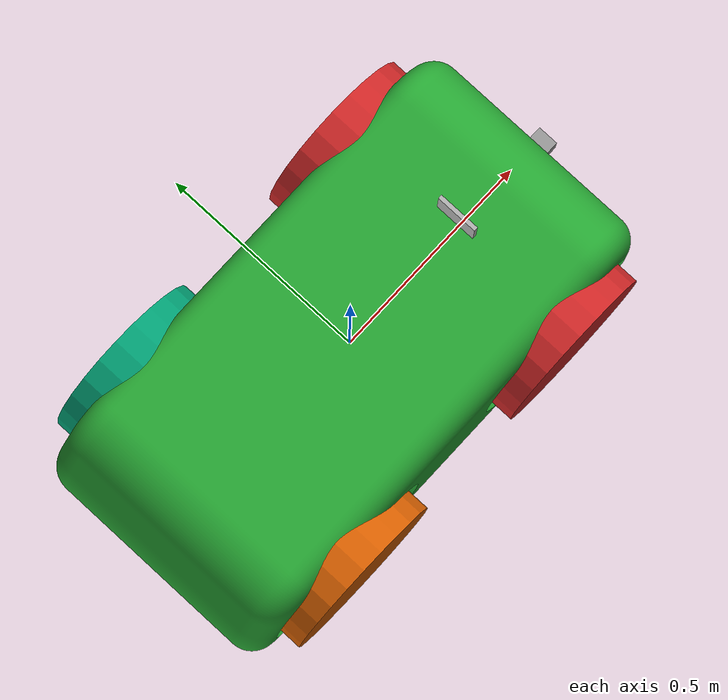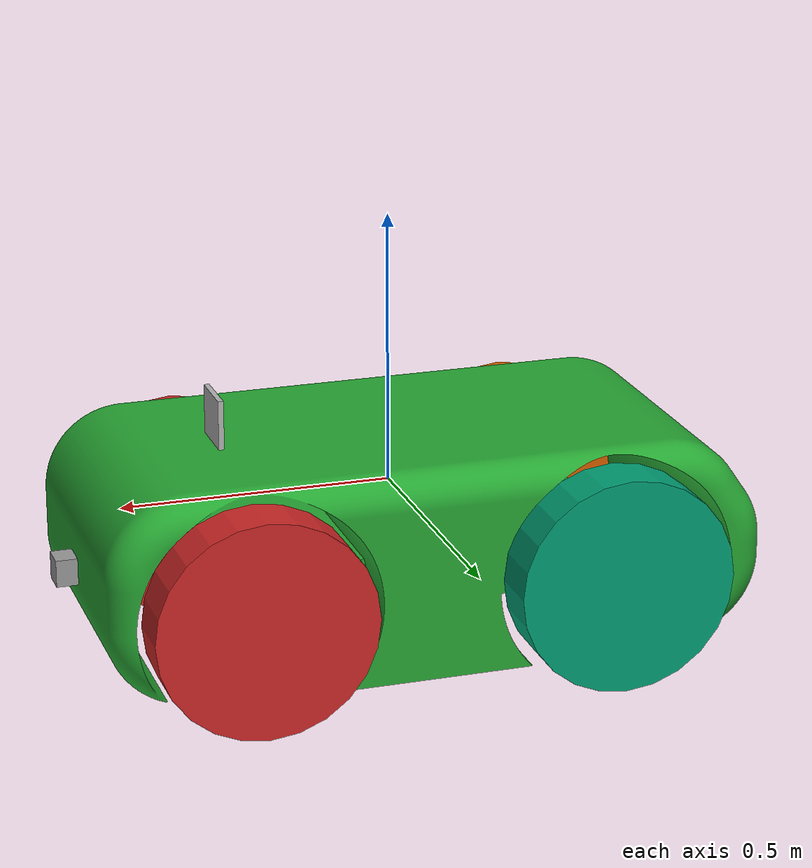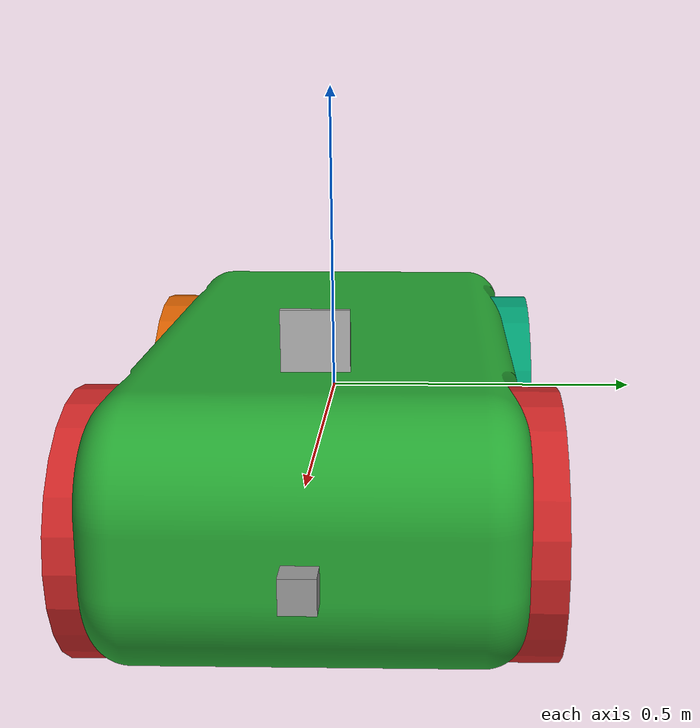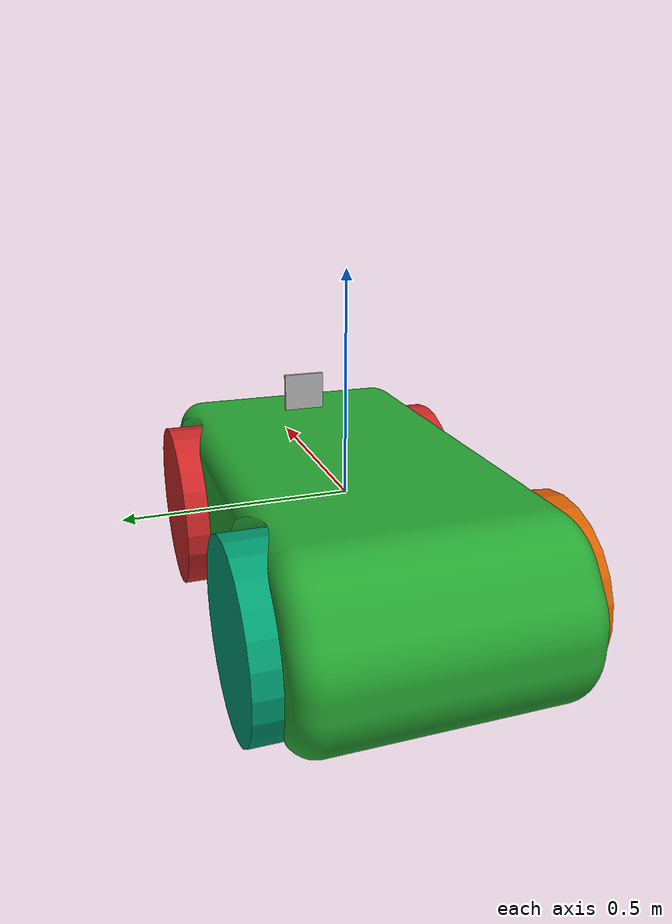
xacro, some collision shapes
<?xml version='1.0'?>

<robot name="four_wheeled" xmlns:xacro="http://www.ros.org/wiki/xacro">
<xacro:include filename="$(find my_robot)/urdf/four_wheeled.gazebo" />
  <link name="robot_footprint"></link>

  <joint name="robot_footprint_joint" type="fixed">
    <origin xyz="0 0 0" rpy="0 0 0" />
    <parent link="robot_footprint"/>
    <child link="chassis" />
  </joint>

  <link name='chassis'>
    <pose>0 0 0.1 0 0 0</pose>

    <inertial>
      <mass value="15.0"/>
      <origin xyz="0 0 0" rpy=" 0 0 0"/>
      <inertia
          ixx="0.1" ixy="0" ixz="0"
          iyy="0.1" iyz="0"
          izz="0.1"
      />
    </inertial>

    <collision name='collision'>
      <origin xyz="0 0 -0.1" rpy=" 0 0 0"/>
      <geometry>
        <box size="0.75 0.5 0.1"/>
      </geometry>
    </collision>

    <visual name='chassis_visual'>
      <origin xyz="-0.025 0 -0.13" rpy=" 0 0 0"/>
      <geometry>
        <mesh filename="package://my_robot/meshes/chassis.dae" scale="1 1 1"/>
        <!--box size="0.75 0.5 0.1"/-->
      </geometry>
    </visual>

  </link>

  <link name='left_wheel_back'>
    <inertial>
      <mass value="5.0"/>
      <origin xyz="0 0 0" rpy="0 1.5707 1.5707"/>
      <inertia
          ixx="0.1" ixy="0" ixz="0"
          iyy="0.1" iyz="0"
          izz="0.1"
      />
    </inertial>

    <collision name='left_wheel_back_collision'>
      <origin xyz="0 0 0" rpy="0 1.5707 1.5707"/>
      <geometry>
        <cylinder length="0.1" radius="0.2"/>
      </geometry>
    </collision>

    <visual name='left_wheel_back_visual'>
      <origin xyz="0 0 0" rpy="0 1.5707 1.5707"/>
      <geometry>
        <cylinder length="0.1" radius="0.2"/>
      </geometry>
    </visual>
  </link>

  <joint type="continuous" name="left_wheel_back_hinge">
    <origin xyz="-0.335901 0.300159 -0.120032" rpy="0 0 0"/>
    <child link="left_wheel_back"/>
    <parent link="chassis"/>
    <axis xyz="0 1 0" rpy="0 0 0"/>
    <limit effort="10000" velocity="1000"/>
    <dynamics damping="1.0" friction="1.0"/>
  </joint>

  <link name='left_wheel_front'>
    <inertial>
      <mass value="5.0"/>
      <origin xyz="0 0 0" rpy="0 1.5707 1.5707"/>
      <inertia
          ixx="0.1" ixy="0" ixz="0"
          iyy="0.1" iyz="0"
          izz="0.1"
      />
    </inertial>

    <collision name='left_wheel_front_collision'>
      <origin xyz="0 0 0" rpy="0 1.5707 1.5707"/>
      <geometry>
        <cylinder length="0.1" radius="0.2"/>
      </geometry>
    </collision>

    <visual name='left_wheel_front_visual'>
      <origin xyz="0 0 0" rpy="0 1.5707 1.5707"/>
      <geometry>
        <cylinder length="0.1" radius="0.2"/>
      </geometry>
    </visual>
  </link>

  <joint type="continuous" name="left_wheel_front_hinge">
    <origin xyz="0.324099 0.300159 -0.120032" rpy="0 0 0"/>
    <child link="left_wheel_front"/>
    <parent link="chassis"/>
    <axis xyz="0 1 0" rpy="0 0 0"/>
    <limit effort="10000" velocity="1000"/>
    <dynamics damping="1.0" friction="1.0"/>
  </joint>

  <link name='right_wheel_front'>
    <inertial>
      <mass value="5.0"/>
      <origin xyz="0 0 0" rpy="0 1.5707 1.5707"/>
      <inertia
          ixx="0.1" ixy="0" ixz="0"
          iyy="0.1" iyz="0"
          izz="0.1"
      />
    </inertial>

    <collision name='right_wheel_front_collision'>
      <origin xyz="0 0 0" rpy="0 1.5707 1.5707"/>
      <geometry>
        <cylinder length="0.1" radius="0.2"/>
      </geometry>
    </collision>

    <visual name='right_wheel_front_visual'>
      <origin xyz="0 0 0" rpy="0 1.5707 1.5707"/>
      <geometry>
        <cylinder length="0.1" radius="0.2"/>
      </geometry>
    </visual>
  </link>

  <joint type="continuous" name="right_wheel_front_hinge">
    <origin xyz="0.324099 -0.300159 -0.120032" rpy="0 0 0"/>
    <child link="right_wheel_front"/>
    <parent link="chassis"/>
    <axis xyz="0 1 0" rpy="0 0 0"/>
    <limit effort="10000" velocity="1000"/>
    <dynamics damping="1.0" friction="1.0"/>
  </joint>

  <link name='right_wheel_back'>
    <inertial>
      <mass value="5.0"/>
      <origin xyz="0 0 0" rpy="0 1.5707 1.5707"/>
      <inertia
          ixx="0.1" ixy="0" ixz="0"
          iyy="0.1" iyz="0"
          izz="0.1"
      />
    </inertial>

    <collision name='right_wheel_back_collision'>
      <origin xyz="0 0 0" rpy="0 1.5707 1.5707"/>
      <geometry>
        <cylinder length="0.1" radius="0.2"/>
      </geometry>
    </collision>

    <visual name='right_wheel_back_visual'>
      <origin xyz="0 0 0" rpy="0 1.5707 1.5707"/>
      <geometry>
        <cylinder length="0.1" radius="0.2"/>
      </geometry>
    </visual>
  </link>

  <joint type="continuous" name="right_wheel_back_hinge">
    <origin xyz="-0.335901 -0.300159 -0.120032" rpy="0 0 0"/>
    <child link="right_wheel_back"/>
    <parent link="chassis"/>
    <axis xyz="0 1 0" rpy="0 0 0"/>
    <limit effort="10000" velocity="1000"/>
    <dynamics damping="1.0" friction="1.0"/>
  </joint>

  <link name='camera'>
    <inertial>
      <origin xyz="0 0 0" rpy="0 0 0"/>
      <mass value="0.1"/>
      <inertia
        ixx="1e-6" ixy="0" ixz="0"
        iyy="1e-6" iyz="0"
        izz="1e-6"
      />
    </inertial>

    <collision>
      <origin xyz="0 0 0" rpy="0 0 0"/>
      <geometry>
        <box size="0.05 0.05 0.05"/>
      </geometry>
    </collision>

    <visual>
      <origin xyz="0 0 0" rpy="0 0 0"/>
      <geometry>
        <box size="0.05 0.05 0.05"/>
      </geometry>
    </visual>
  </link>

  <joint name="camera_joint" type="fixed">
    <axis xyz="0 1 0" rpy="0 0 0"/>
    <origin xyz = "0.6 0 -0.1" rpy="0 0 0"/>
    <parent link="chassis"/>
    <child link="camera"/>
  </joint>

  <link name='hokuyo'>
    <inertial>
      <origin xyz="0 0 0" rpy="0 0 0"/>
      <mass value="1e-5"/>
      <inertia
        ixx="1e-6" ixy="0" ixz="0"
        iyy="1e-6" iyz="0"
        izz="1e-6"
      />
    </inertial>

    <collision>
      <origin xyz="0 0 0" rpy="0 0 0"/>
      <geometry>
        <box size="0.01 0.1 0.1"/>
      </geometry>
    </collision>

    <visual>
      <origin xyz="0 0 0" rpy="0 0 0"/>
      <geometry>
        <mesh filename="package://my_robot/meshes/hokuyo.dae"/>
      </geometry>
    </visual>
  </link>

  <joint name="hokuyo_joint" type="fixed">
    <axis xyz="0 1 0" rpy="0 0 0"/>
    <origin xyz = "0.325 0 0.15" rpy="0 0 0"/>
    <parent link="chassis"/>
    <child link="hokuyo"/>
  </joint>

  <gazebo reference="camera">
    <material>Gazebo/Grey</material>
  </gazebo>

  <gazebo reference="left_wheel_front">
    <material>Gazebo/Red </material>
  </gazebo>

  <gazebo reference="right_wheel_front">
    <material>Gazebo/Red</material>
  </gazebo>

  <gazebo reference="chassis">
    <material>Gazebo/Green</material>
  </gazebo>
</robot>
